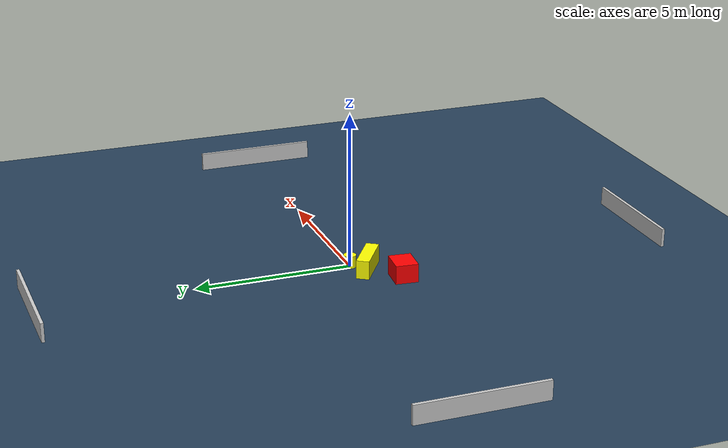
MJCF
<?xml version="1.0" ?>
<mujoco model="generated_environment">
  <option timestep="0.01" integrator="RK4" cone="elliptic"/>
  <default>
    <geom density="1"/>
  </default>
  <asset>
    <texture builtin="gradient" height="3072" name="skybox" rgb1="0.3 0.5 0.7" rgb2="0 0 0" type="skybox" width="512"/>
    <texture builtin="checker" height="300" name="groundplane" rgb1="0.2 0.3 0.4" rgb2="0.1 0.2 0.3" type="2d" width="300"/>
    <material name="groundplane" reflectance="0.2" texrepeat="5 5" texture="groundplane"/>
  </asset>
  <worldbody>
    <light dir="0 0 -1" directional="true" pos="0 0 1.5"/>
    <geom condim="3" friction="0.5 0.005 0.001" material="groundplane" name="floor" pos="0 0 0" size="0 0 0.05" type="plane"/>
    <body name="walls">
      <geom name="wall_1" condim="4" pos="-10.0 0.0 0.3" rgba="0.800000011920929 0.800000011920929 0.800000011920929 1.0" size="0.05 2.0 0.3" type="box"/>
      <geom name="wall_2" condim="4" pos="10.0 0.0 0.3" rgba="0.800000011920929 0.800000011920929 0.800000011920929 1.0" size="0.05 2.0 0.3" type="box"/>
      <geom name="wall_3" condim="4" pos="0.0 -10.0 0.3" rgba="0.800000011920929 0.800000011920929 0.800000011920929 1.0" size="2.0 0.05 0.3" type="box"/>
      <geom name="wall_4" condim="4" pos="0.0 10.0 0.3" rgba="0.800000011920929 0.800000011920929 0.800000011920929 1.0" size="2.0 0.05 0.3" type="box"/>
    </body>
    <body name="robot">
      <joint name="joint_x" type="slide" pos="0 0 0" axis="1 0 0"/>
      <joint name="joint_y" type="slide" pos="0 0 0" axis="0 1 0"/>
      <geom name="robot" type="cylinder" pos="0.0 0.0 0.2" size="0.2 0.2 0.0" mass="5.0" friction="1.0 0.005 0.0001" condim="4" rgba="1.0 1.0 0.0 1.0"/>
    </body>
    <body name="obstacle_1_movable">
      <geom name="obstacle_1_movable" condim="4" pos="-0.4536738258807776 -0.4255909000633924 0.3" euler="0 0 56.70331537555416" friction="0.0 0.005 0.001" rgba="1.0 1.0 0.0 1.0" size="0.20421625675498933 0.7140594904445363 0.3" type="box" mass="0.1"/>
      <joint type="free"/>
    </body>
    <body name="obstacle_2_static">
      <geom name="obstacle_2_static" condim="4" pos="-1.3792435875175957 -1.2417141345949636 0.3" euler="0 0 174.73936593732918" friction="0.0 0.005 0.001" rgba="1.0 0.0 0.0 1.0" size="0.4357981880812261 0.3610432936113008 0.3" type="box"/>
    </body>
  </worldbody>
  <actuator>
    <motor name="actuator_x" joint="joint_x" gear="1" ctrlrange="-1 1"/>
    <motor name="actuator_y" joint="joint_y" gear="1" ctrlrange="-1 1"/>
  </actuator>
</mujoco>
